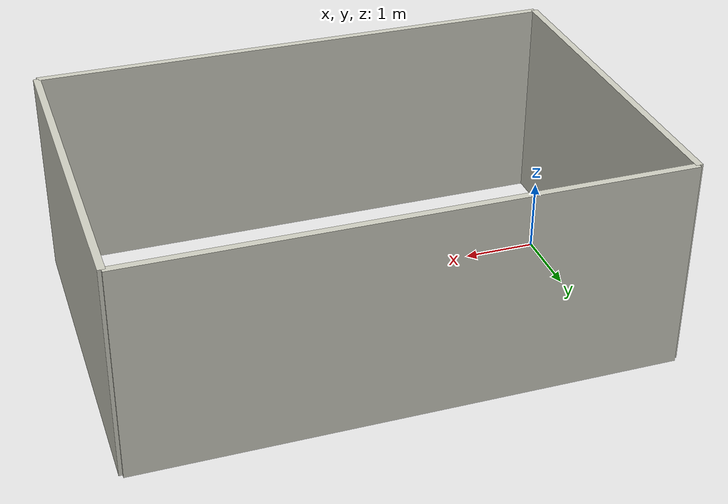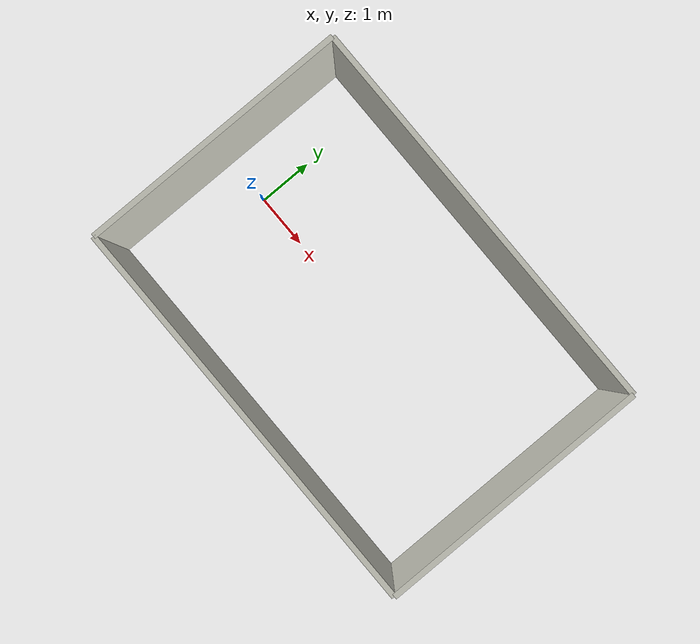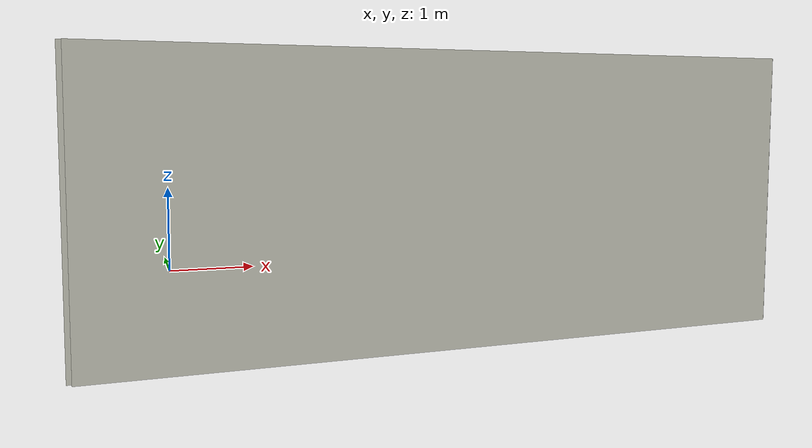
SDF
<?xml version='1.0'?>
<sdf version='1.4'>
  <model name='Cage'>
    <link name='Wall_1'>
      <collision name='Wall_1_Collision'>
        <pose>-1 0 1 0 0 0</pose>
        <geometry>
          <box>
            <size>0.1 5 3</size>
          </box>
        </geometry>
      </collision>
      <visual name='Wall_1_Visual'>
        <pose>-1 0 1 0 0 0</pose>
        <geometry>
          <box>
            <size>0.1 5 3</size>
          </box>
        </geometry>
        <material>
          <script>
            <uri>file://media/materials/scripts/gazebo.material</uri>
            <name>Gazebo/PaintedWall</name>
          </script>
        </material>
      </visual>
    </link>
    <link name='Wall_2'>
      <collision name='Wall_2_Collision'>
        <pose>2.75 2.5 1 0 0 0</pose>
        <geometry>
          <box>
            <size>7.5 0.1 3</size>
          </box>
        </geometry>
      </collision>
      <visual name='Wall_2_Visual'>
        <pose>2.75 2.5 1 0 0 0</pose>
        <geometry>
          <box>
            <size>7.5 0.1 3</size>
          </box>
        </geometry>
        <material>
          <script>
            <uri>file://media/materials/scripts/gazebo.material</uri>
            <name>Gazebo/PaintedWall</name>
          </script>
        </material>
      </visual>
    </link>
    <link name='Wall_3'>
      <collision name='Wall_3_Collision'>
        <pose>6.5 0 1 0 0 0</pose>
        <geometry>
          <box>
            <size>0.1 5 3</size>
          </box>
        </geometry>
      </collision>
      <visual name='Wall_3_Visual'>
        <pose>6.5 0 1 0 0 0</pose>
        <geometry>
          <box>
            <size>0.1 5 3</size>
          </box>
        </geometry>
        <material>
          <script>
            <uri>file://media/materials/scripts/gazebo.material</uri>
            <name>Gazebo/PaintedWall</name>
          </script>
        </material>
      </visual>
    </link>
        <link name='Wall_4'>
      <collision name='Wall_4_Collision'>
        <pose>2.75 -2.5 1 0 0 0</pose>
        <geometry>
          <box>
            <size>7.5 0.1 3</size>
          </box>
        </geometry>
      </collision>
      <visual name='Wall_2_Visual'>
        <pose>2.75 -2.5 1 0 0 0</pose>
        <geometry>
          <box>
            <size>7.5 0.1 3</size>
          </box>
        </geometry>
        <material>
          <script>
            <uri>file://media/materials/scripts/gazebo.material</uri>
            <name>Gazebo/PaintedWall</name>
          </script>
        </material>
      </visual>
    </link>
    <static>1</static>
  </model>
</sdf>
